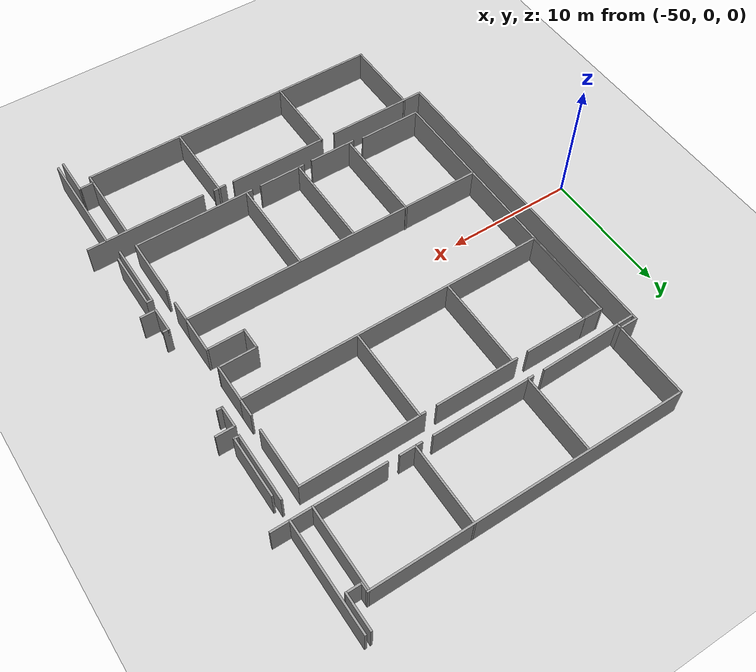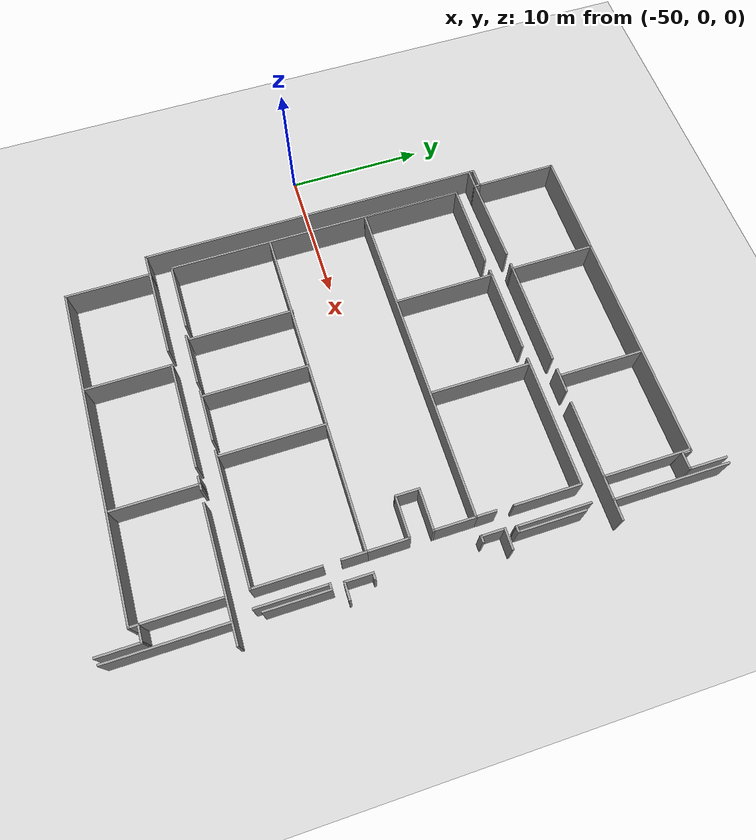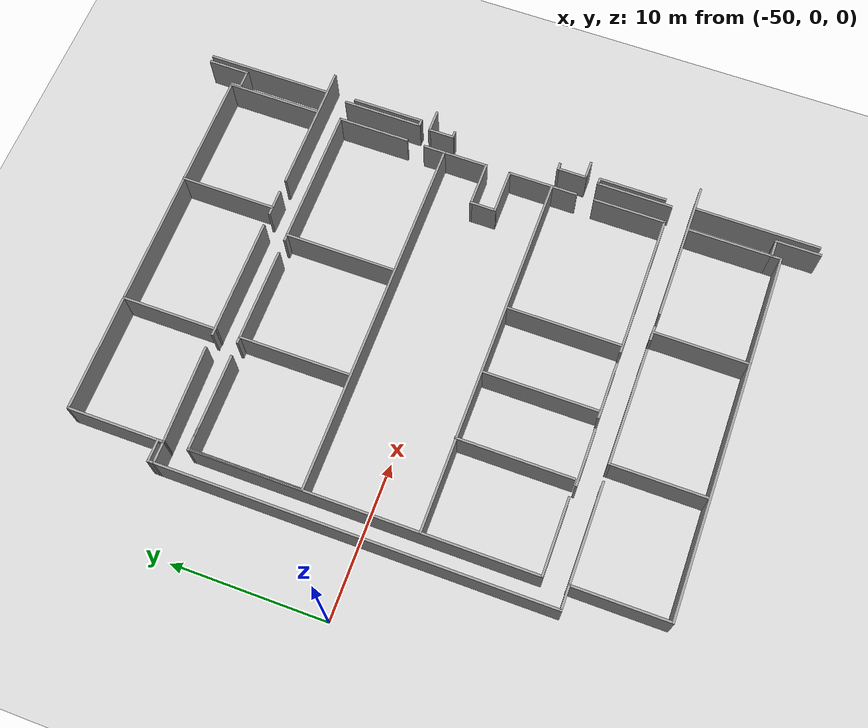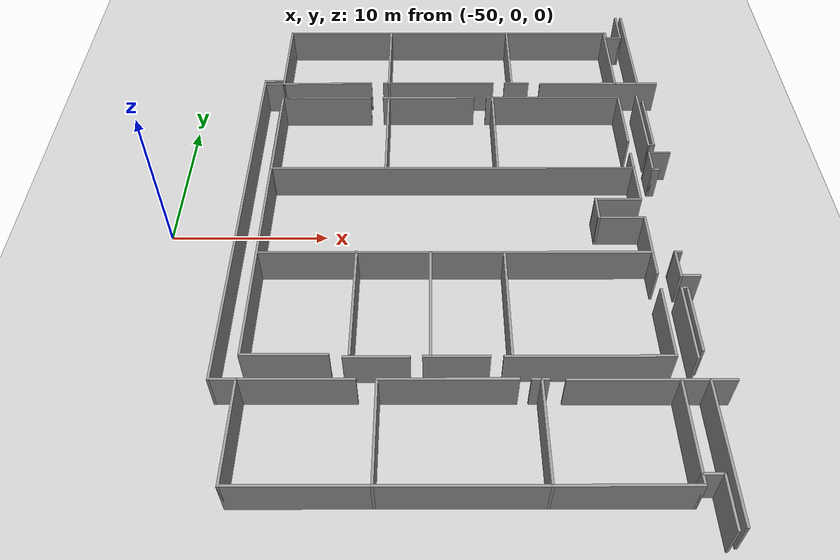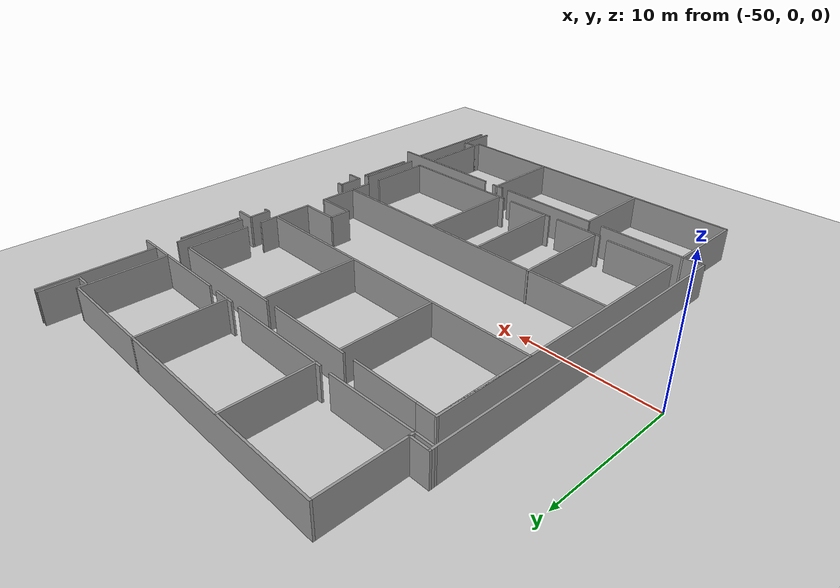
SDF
<sdf version="1.7">
 <world name="default">
  <model name="ground_plane">
   <static>1</static>
   <link name="link">
    <collision name="collision">
     <geometry><plane><normal>0 0 1</normal><size>100 100</size></plane></geometry>
     <surface>
      <contact><collide_bitmask>65535</collide_bitmask></contact>
      <friction><ode><mu>100</mu><mu2>50</mu2></ode></friction>
     </surface>
    </collision>
    <visual name="visual">
     <cast_shadows>0</cast_shadows>
     <geometry><plane><normal>0 0 1</normal><size>100 100</size></plane></geometry>
     <material>
      <script><uri>file://media/materials/scripts/gazebo.material</uri><name>Gazebo/Grey</name></script>
     </material>
    </visual>
   </link>
  </model>
  <model name="minerva">
   <pose>-0.765751 0.164905 0 0 -0 0</pose>
   <link name="Wall_10">
    <collision name="Wall_10_Collision">
     <geometry><box><size>0.75 0.15 2.5</size></box></geometry>
     <pose>0 0 1.25 0 -0 0</pose>
    </collision>
    <visual name="Wall_10_Visual">
     <pose>0 0 1.25 0 -0 0</pose>
     <geometry><box><size>0.75 0.15 2.5</size></box></geometry>
     <material>
      <script><uri>file://media/materials/scripts/gazebo.material</uri><name>Gazebo/Grey</name></script>
      <ambient>1 1 1 1</ambient>
     </material>
     <meta><layer>0</layer></meta>
    </visual>
    <pose>-19.05 18.4608 0 0 -0 1.5708</pose>
   </link>
   <link name="Wall_13">
    <collision name="Wall_13_Collision">
     <geometry><box><size>24.25 0.15 2.5</size></box></geometry>
     <pose>0 0 1.25 0 -0 0</pose>
    </collision>
    <visual name="Wall_13_Visual">
     <pose>0 0 1.25 0 -0 0</pose>
     <geometry><box><size>24.25 0.15 2.5</size></box></geometry>
     <material>
      <script><uri>file://media/materials/scripts/gazebo.material</uri><name>Gazebo/Grey</name></script>
      <ambient>1 1 1 1</ambient>
     </material>
     <meta><layer>0</layer></meta>
    </visual>
    <pose>-31.1 18.7608 0 0 -0 3.14159</pose>
   </link>
   <link name="Wall_14">
    <collision name="Wall_14_Collision">
     <geometry><box><size>6 0.15 2.5</size></box></geometry>
     <pose>0 0 1.25 0 -0 0</pose>
    </collision>
    <visual name="Wall_14_Visual">
     <pose>0 0 1.25 0 -0 0</pose>
     <geometry><box><size>6 0.15 2.5</size></box></geometry>
     <material>
      <script><uri>file://media/materials/scripts/gazebo.material</uri><name>Gazebo/Grey</name></script>
      <ambient>1 1 1 1</ambient>
     </material>
     <meta><layer>0</layer></meta>
    </visual>
    <pose>-43.15 15.8358 0 0 -0 -1.5708</pose>
   </link>
   <link name="Wall_15">
    <collision name="Wall_15_Collision">
     <geometry><box><size>1.5 0.15 2.5</size></box></geometry>
     <pose>0 0 1.25 0 -0 0</pose>
    </collision>
    <visual name="Wall_15_Visual">
     <pose>0 0 1.25 0 -0 0</pose>
     <geometry><box><size>1.5 0.15 2.5</size></box></geometry>
     <material>
      <script><uri>file://media/materials/scripts/gazebo.material</uri><name>Gazebo/Grey</name></script>
      <ambient>1 1 1 1</ambient>
     </material>
     <meta><layer>0</layer></meta>
    </visual>
    <pose>-43.825 12.9108 0 0 -0 3.14159</pose>
   </link>
   <link name="Wall_17">
    <collision name="Wall_17_Collision">
     <geometry><box><size>25.5 0.15 2.5</size></box></geometry>
     <pose>0 0 1.25 0 -0 0</pose>
    </collision>
    <visual name="Wall_17_Visual">
     <pose>0 0 1.25 0 -0 0</pose>
     <geometry><box><size>25.5 0.15 2.5</size></box></geometry>
     <material>
      <script><uri>file://media/materials/scripts/gazebo.material</uri><name>Gazebo/Grey</name></script>
      <ambient>1 1 1 1</ambient>
     </material>
     <meta><layer>0</layer></meta>
    </visual>
    <pose>-44.5 0.235782 0 0 -0 -1.5708</pose>
   </link>
   <link name="Wall_18">
    <collision name="Wall_18_Collision">
     <geometry><box><size>8 0.15 2.5</size></box></geometry>
     <pose>0 0 1.25 0 -0 0</pose>
    </collision>
    <visual name="Wall_18_Visual">
     <pose>0 0 1.25 0 -0 0</pose>
     <geometry><box><size>8 0.15 2.5</size></box></geometry>
     <material>
      <script><uri>file://media/materials/scripts/gazebo.material</uri><name>Gazebo/Grey</name></script>
      <ambient>1 1 1 1</ambient>
     </material>
     <meta><layer>0</layer></meta>
    </visual>
    <pose>-40.575 -12.4392 0 0 -0 0</pose>
   </link>
   <link name="Wall_20">
    <collision name="Wall_20_Collision">
     <geometry><box><size>6.25 0.15 2.5</size></box></geometry>
     <pose>0 0 1.25 0 -0 0</pose>
    </collision>
    <visual name="Wall_20_Visual">
     <pose>0 0 1.25 0 -0 0</pose>
     <geometry><box><size>6.25 0.15 2.5</size></box></geometry>
     <material>
      <script><uri>file://media/materials/scripts/gazebo.material</uri><name>Gazebo/Grey</name></script>
      <ambient>1 1 1 1</ambient>
     </material>
     <meta><layer>0</layer></meta>
    </visual>
    <pose>-43.0132 -15.4758 0 0 -0 -1.5708</pose>
   </link>
   <link name="Wall_21">
    <collision name="Wall_21_Collision">
     <geometry><box><size>24 0.15 2.5</size></box></geometry>
     <pose>0 0 1.25 0 -0 0</pose>
    </collision>
    <visual name="Wall_21_Visual">
     <pose>0 0 1.25 0 -0 0</pose>
     <geometry><box><size>24 0.15 2.5</size></box></geometry>
     <material>
      <script><uri>file://media/materials/scripts/gazebo.material</uri><name>Gazebo/Grey</name></script>
      <ambient>1 1 1 1</ambient>
     </material>
     <meta><layer>0</layer></meta>
    </visual>
    <pose>-31.0882 -18.5258 0 0 -0 0</pose>
   </link>
   <link name="Wall_22">
    <collision name="Wall_22_Collision">
     <geometry><box><size>0.75 0.15 2.5</size></box></geometry>
     <pose>0 0 1.25 0 -0 0</pose>
    </collision>
    <visual name="Wall_22_Visual">
     <pose>0 0 1.25 0 -0 0</pose>
     <geometry><box><size>0.75 0.15 2.5</size></box></geometry>
     <material>
      <script><uri>file://media/materials/scripts/gazebo.material</uri><name>Gazebo/Grey</name></script>
      <ambient>1 1 1 1</ambient>
     </material>
     <meta><layer>0</layer></meta>
    </visual>
    <pose>-19.1632 -18.2258 0 0 -0 1.5708</pose>
   </link>
   <link name="Wall_23">
    <collision name="Wall_23_Collision">
     <geometry><box><size>1.25 0.15 2.5</size></box></geometry>
     <pose>0 0 1.25 0 -0 0</pose>
    </collision>
    <visual name="Wall_23_Visual">
     <pose>0 0 1.25 0 -0 0</pose>
     <geometry><box><size>1.25 0.15 2.5</size></box></geometry>
     <material>
      <script><uri>file://media/materials/scripts/gazebo.material</uri><name>Gazebo/Grey</name></script>
      <ambient>1 1 1 1</ambient>
     </material>
     <meta><layer>0</layer></meta>
    </visual>
    <pose>-18.6132 -17.9258 0 0 -0 0</pose>
   </link>
   <link name="Wall_24">
    <collision name="Wall_24_Collision">
     <geometry><box><size>3 0.15 2.5</size></box></geometry>
     <pose>0 0 1.25 0 -0 0</pose>
    </collision>
    <visual name="Wall_24_Visual">
     <pose>0 0 1.25 0 -0 0</pose>
     <geometry><box><size>3 0.15 2.5</size></box></geometry>
     <material>
      <script><uri>file://media/materials/scripts/gazebo.material</uri><name>Gazebo/Grey</name></script>
      <ambient>1 1 1 1</ambient>
     </material>
     <meta><layer>0</layer></meta>
    </visual>
    <pose>-18.0632 -19.3508 0 0 -0 -1.5708</pose>
   </link>
   <link name="Wall_280">
    <collision name="Wall_280_Collision">
     <geometry><box><size>8.25 0.15 2.5</size></box></geometry>
     <pose>0 0 1.25 0 -0 0</pose>
    </collision>
    <visual name="Wall_280_Visual">
     <pose>0 0 1.25 0 -0 0</pose>
     <geometry><box><size>8.25 0.15 2.5</size></box></geometry>
     <material>
      <script><uri>file://media/materials/scripts/gazebo.material</uri><name>Gazebo/Grey</name></script>
      <ambient>1 1 1 1</ambient>
     </material>
     <meta><layer>0</layer></meta>
    </visual>
    <pose>-17.5469 16.7103 0 0 -0 -1.5708</pose>
   </link>
   <link name="Wall_282">
    <collision name="Wall_282_Collision">
     <geometry><box><size>8.5 0.15 2.5</size></box></geometry>
     <pose>0 0 1.25 0 -0 0</pose>
    </collision>
    <visual name="Wall_282_Visual">
     <pose>0 0 1.25 0 -0 0</pose>
     <geometry><box><size>8.5 0.15 2.5</size></box></geometry>
     <material>
      <script><uri>file://media/materials/scripts/gazebo.material</uri><name>Gazebo/Grey</name></script>
      <ambient>1 1 1 1</ambient>
     </material>
     <meta><layer>0</layer></meta>
    </visual>
    <pose>-20.3727 12.6031 0 0 -0 3.14159</pose>
   </link>
   <link name="Wall_284">
    <collision name="Wall_284_Collision">
     <geometry><box><size>6.25 0.15 2.5</size></box></geometry>
     <pose>0 0 1.25 0 -0 0</pose>
    </collision>
    <visual name="Wall_284_Visual">
     <pose>0 0 1.25 0 -0 0</pose>
     <geometry><box><size>6.25 0.15 2.5</size></box></geometry>
     <material>
      <script><uri>file://media/materials/scripts/gazebo.material</uri><name>Gazebo/Grey</name></script>
      <ambient>1 1 1 1</ambient>
     </material>
     <meta><layer>0</layer></meta>
    </visual>
    <pose>-19.1597 15.6531 0 0 -0 1.5708</pose>
   </link>
   <link name="Wall_286">
    <collision name="Wall_286_Collision">
     <geometry><box><size>1.75 0.15 2.5</size></box></geometry>
     <pose>0 0 1.25 0 -0 0</pose>
    </collision>
    <visual name="Wall_286_Visual">
     <pose>0 0 1.25 0 -0 0</pose>
     <geometry><box><size>1.75 0.15 2.5</size></box></geometry>
     <material>
      <script><uri>file://media/materials/scripts/gazebo.material</uri><name>Gazebo/Grey</name></script>
      <ambient>1 1 1 1</ambient>
     </material>
     <meta><layer>0</layer></meta>
    </visual>
    <pose>-26.3087 12.6368 0 0 -0 3.14159</pose>
   </link>
   <link name="Wall_288">
    <collision name="Wall_288_Collision">
     <geometry><box><size>8 0.15 2.5</size></box></geometry>
     <pose>0 0 1.25 0 -0 0</pose>
    </collision>
    <visual name="Wall_288_Visual">
     <pose>0 0 1.25 0 -0 0</pose>
     <geometry><box><size>8 0.15 2.5</size></box></geometry>
     <material>
      <script><uri>file://media/materials/scripts/gazebo.material</uri><name>Gazebo/Grey</name></script>
      <ambient>1 1 1 1</ambient>
     </material>
     <meta><layer>0</layer></meta>
    </visual>
    <pose>-31.9686 12.6514 0 0 -0 0</pose>
   </link>
   <link name="Wall_291">
    <collision name="Wall_291_Collision">
     <geometry><box><size>6.25 0.15 2.5</size></box></geometry>
     <pose>0 0 1.25 0 -0 0</pose>
    </collision>
    <visual name="Wall_291_Visual">
     <pose>0 0 1.25 0 -0 0</pose>
     <geometry><box><size>6.25 0.15 2.5</size></box></geometry>
     <material>
      <script><uri>file://media/materials/scripts/gazebo.material</uri><name>Gazebo/Grey</name></script>
      <ambient>1 1 1 1</ambient>
     </material>
     <meta><layer>0</layer></meta>
    </visual>
    <pose>-26.6555 15.7192 0 0 -0 1.5708</pose>
   </link>
   <link name="Wall_293">
    <collision name="Wall_293_Collision">
     <geometry><box><size>6.25 0.15 2.5</size></box></geometry>
     <pose>0 0 1.25 0 -0 0</pose>
    </collision>
    <visual name="Wall_293_Visual">
     <pose>0 0 1.25 0 -0 0</pose>
     <geometry><box><size>6.25 0.15 2.5</size></box></geometry>
     <material>
      <script><uri>file://media/materials/scripts/gazebo.material</uri><name>Gazebo/Grey</name></script>
      <ambient>1 1 1 1</ambient>
     </material>
     <meta><layer>0</layer></meta>
    </visual>
    <pose>-35.5369 15.6835 0 0 -0 1.5708</pose>
   </link>
   <link name="Wall_299">
    <collision name="Wall_299_Collision">
     <geometry><box><size>0.5 0.15 2.5</size></box></geometry>
     <pose>0 0 1.25 0 -0 0</pose>
    </collision>
    <visual name="Wall_299_Visual">
     <pose>0 0 1.25 0 -0 0</pose>
     <geometry><box><size>0.5 0.15 2.5</size></box></geometry>
     <material>
      <script><uri>file://media/materials/scripts/gazebo.material</uri><name>Gazebo/Grey</name></script>
      <ambient>1 1 1 1</ambient>
     </material>
     <meta><layer>0</layer></meta>
    </visual>
    <pose>-43.15 12.7358 0 0 -0 -1.5708</pose>
   </link>
   <link name="Wall_301">
    <collision name="Wall_301_Collision">
     <geometry><box><size>6.43697 0.15 2.5</size></box></geometry>
     <pose>0 0 1.25 0 -0 0</pose>
    </collision>
    <visual name="Wall_301_Visual">
     <pose>0 0 1.25 0 -0 0</pose>
     <geometry><box><size>6.43697 0.15 2.5</size></box></geometry>
     <material>
      <script><uri>file://media/materials/scripts/gazebo.material</uri><name>Gazebo/Grey</name></script>
      <ambient>1 1 1 1</ambient>
     </material>
     <meta><layer>0</layer></meta>
    </visual>
    <pose>-40.0071 12.6206 0 0 -0 -3.12255</pose>
   </link>
   <link name="Wall_303">
    <collision name="Wall_303_Collision">
     <geometry><box><size>6.25 0.15 2.5</size></box></geometry>
     <pose>0 0 1.25 0 -0 0</pose>
    </collision>
    <visual name="Wall_303_Visual">
     <pose>0 0 1.25 0 -0 0</pose>
     <geometry><box><size>6.25 0.15 2.5</size></box></geometry>
     <material>
      <script><uri>file://media/materials/scripts/gazebo.material</uri><name>Gazebo/Grey</name></script>
      <ambient>1 1 1 1</ambient>
     </material>
     <meta><layer>0</layer></meta>
    </visual>
    <pose>-39.901 10.9921 0 0 -0 0</pose>
   </link>
   <link name="Wall_305">
    <collision name="Wall_305_Collision">
     <geometry><box><size>6.5 0.15 2.5</size></box></geometry>
     <pose>0 0 1.25 0 -0 0</pose>
    </collision>
    <visual name="Wall_305_Visual">
     <pose>0 0 1.25 0 -0 0</pose>
     <geometry><box><size>6.5 0.15 2.5</size></box></geometry>
     <material>
      <script><uri>file://media/materials/scripts/gazebo.material</uri><name>Gazebo/Grey</name></script>
      <ambient>1 1 1 1</ambient>
     </material>
     <meta><layer>0</layer></meta>
    </visual>
    <pose>-32.6767 11.0157 0 0 -0 0</pose>
   </link>
   <link name="Wall_307">
    <collision name="Wall_307_Collision">
     <geometry><box><size>9.5 0.15 2.5</size></box></geometry>
     <pose>0 0 1.25 0 -0 0</pose>
    </collision>
    <visual name="Wall_307_Visual">
     <pose>0 0 1.25 0 -0 0</pose>
     <geometry><box><size>9.5 0.15 2.5</size></box></geometry>
     <material>
      <script><uri>file://media/materials/scripts/gazebo.material</uri><name>Gazebo/Grey</name></script>
      <ambient>1 1 1 1</ambient>
     </material>
     <meta><layer>0</layer></meta>
    </visual>
    <pose>-23.818 11.0157 0 0 -0 0</pose>
   </link>
   <link name="Wall_308">
    <collision name="Wall_308_Collision">
     <geometry><box><size>4.75 0.15 2.5</size></box></geometry>
     <pose>0 0 1.25 0 -0 0</pose>
    </collision>
    <visual name="Wall_308_Visual">
     <pose>0 0 1.25 0 -0 0</pose>
     <geometry><box><size>4.75 0.15 2.5</size></box></geometry>
     <material>
      <script><uri>file://media/materials/scripts/gazebo.material</uri><name>Gazebo/Grey</name></script>
      <ambient>1 1 1 1</ambient>
     </material>
     <meta><layer>0</layer></meta>
    </visual>
    <pose>-19.143 8.71568 0 0 -0 -1.5708</pose>
   </link>
   <link name="Wall_310">
    <collision name="Wall_310_Collision">
     <geometry><box><size>1.5 0.15 2.5</size></box></geometry>
     <pose>0 0 1.25 0 -0 0</pose>
    </collision>
    <visual name="Wall_310_Visual">
     <pose>0 0 1.25 0 -0 0</pose>
     <geometry><box><size>1.5 0.15 2.5</size></box></geometry>
     <material>
      <script><uri>file://media/materials/scripts/gazebo.material</uri><name>Gazebo/Grey</name></script>
      <ambient>1 1 1 1</ambient>
     </material>
     <meta><layer>0</layer></meta>
    </visual>
    <pose>-19.1766 4.46785 0 0 -0 -1.5708</pose>
   </link>
   <link name="Wall_311">
    <collision name="Wall_311_Collision">
     <geometry><box><size>24 0.15 2.5</size></box></geometry>
     <pose>0 0 1.25 0 -0 0</pose>
    </collision>
    <visual name="Wall_311_Visual">
     <pose>0 0 1.25 0 -0 0</pose>
     <geometry><box><size>24 0.15 2.5</size></box></geometry>
     <material>
      <script><uri>file://media/materials/scripts/gazebo.material</uri><name>Gazebo/Grey</name></script>
      <ambient>1 1 1 1</ambient>
     </material>
     <meta><layer>0</layer></meta>
    </visual>
    <pose>-31.1016 3.79285 0 0 -0 3.14159</pose>
   </link>
   <link name="Wall_312">
    <collision name="Wall_312_Collision">
     <geometry><box><size>7.25 0.15 2.5</size></box></geometry>
     <pose>0 0 1.25 0 -0 0</pose>
    </collision>
    <visual name="Wall_312_Visual">
     <pose>0 0 1.25 0 -0 0</pose>
     <geometry><box><size>7.25 0.15 2.5</size></box></geometry>
     <material>
      <script><uri>file://media/materials/scripts/gazebo.material</uri><name>Gazebo/Grey</name></script>
      <ambient>1 1 1 1</ambient>
     </material>
     <meta><layer>0</layer></meta>
    </visual>
    <pose>-43.0266 7.34285 0 0 -0 1.5708</pose>
   </link>
   <link name="Wall_314">
    <collision name="Wall_314_Collision">
     <geometry><box><size>1.5 0.15 2.5</size></box></geometry>
     <pose>0 0 1.25 0 -0 0</pose>
    </collision>
    <visual name="Wall_314_Visual">
     <pose>0 0 1.25 0 -0 0</pose>
     <geometry><box><size>1.5 0.15 2.5</size></box></geometry>
     <material>
      <script><uri>file://media/materials/scripts/gazebo.material</uri><name>Gazebo/Grey</name></script>
      <ambient>1 1 1 1</ambient>
     </material>
     <meta><layer>0</layer></meta>
    </visual>
    <pose>-42.3847 10.9984 0 0 -0 3.14159</pose>
   </link>
   <link name="Wall_316">
    <collision name="Wall_316_Collision">
     <geometry><box><size>7.25 0.15 2.5</size></box></geometry>
     <pose>0 0 1.25 0 -0 0</pose>
    </collision>
    <visual name="Wall_316_Visual">
     <pose>0 0 1.25 0 -0 0</pose>
     <geometry><box><size>7.25 0.15 2.5</size></box></geometry>
     <material>
      <script><uri>file://media/materials/scripts/gazebo.material</uri><name>Gazebo/Grey</name></script>
      <ambient>1 1 1 1</ambient>
     </material>
     <meta><layer>0</layer></meta>
    </visual>
    <pose>-35.5006 7.46141 0 0 -0 -1.5708</pose>
   </link>
   <link name="Wall_318">
    <collision name="Wall_318_Collision">
     <geometry><box><size>7.25 0.15 2.5</size></box></geometry>
     <pose>0 0 1.25 0 -0 0</pose>
    </collision>
    <visual name="Wall_318_Visual">
     <pose>0 0 1.25 0 -0 0</pose>
     <geometry><box><size>7.25 0.15 2.5</size></box></geometry>
     <material>
      <script><uri>file://media/materials/scripts/gazebo.material</uri><name>Gazebo/Grey</name></script>
      <ambient>1 1 1 1</ambient>
     </material>
     <meta><layer>0</layer></meta>
    </visual>
    <pose>-28.1173 7.46141 0 0 -0 -1.5708</pose>
   </link>
   <link name="Wall_328">
    <collision name="Wall_328_Collision">
     <geometry><box><size>5.25 0.15 2.5</size></box></geometry>
     <pose>0 0 1.25 0 -0 0</pose>
    </collision>
    <visual name="Wall_328_Visual">
     <pose>0 0 1.25 0 -0 0</pose>
     <geometry><box><size>5.25 0.15 2.5</size></box></geometry>
     <material>
      <script><uri>file://media/materials/scripts/gazebo.material</uri><name>Gazebo/Grey</name></script>
      <ambient>1 1 1 1</ambient>
     </material>
     <meta><layer>0</layer></meta>
    </visual>
    <pose>-17.8188 8.57608 0 0 -0 -1.5708</pose>
   </link>
   <link name="Wall_329">
    <collision name="Wall_329_Collision">
     <geometry><box><size>0.5 0.15 2.5</size></box></geometry>
     <pose>0 0 1.25 0 -0 0</pose>
    </collision>
    <visual name="Wall_329_Visual">
     <pose>0 0 1.25 0 -0 0</pose>
     <geometry><box><size>0.5 0.15 2.5</size></box></geometry>
     <material>
      <script><uri>file://media/materials/scripts/gazebo.material</uri><name>Gazebo/Grey</name></script>
      <ambient>1 1 1 1</ambient>
     </material>
     <meta><layer>0</layer></meta>
    </visual>
    <pose>-17.6438 6.02608 0 0 -0 0</pose>
   </link>
   <link name="Wall_330">
    <collision name="Wall_330_Collision">
     <geometry><box><size>4.75 0.15 2.5</size></box></geometry>
     <pose>0 0 1.25 0 -0 0</pose>
    </collision>
    <visual name="Wall_330_Visual">
     <pose>0 0 1.25 0 -0 0</pose>
     <geometry><box><size>4.75 0.15 2.5</size></box></geometry>
     <material>
      <script><uri>file://media/materials/scripts/gazebo.material</uri><name>Gazebo/Grey</name></script>
      <ambient>1 1 1 1</ambient>
     </material>
     <meta><layer>0</layer></meta>
    </visual>
    <pose>-17.4688 8.32608 0 0 -0 1.5708</pose>
   </link>
   <link name="Wall_337">
    <collision name="Wall_337_Collision">
     <geometry><box><size>1.5 0.15 2.5</size></box></geometry>
     <pose>0 0 1.25 0 -0 0</pose>
    </collision>
    <visual name="Wall_337_Visual">
     <pose>0 0 1.25 0 -0 0</pose>
     <geometry><box><size>1.5 0.15 2.5</size></box></geometry>
     <material>
      <script><uri>file://media/materials/scripts/gazebo.material</uri><name>Gazebo/Grey</name></script>
      <ambient>1 1 1 1</ambient>
     </material>
     <meta><layer>0</layer></meta>
    </visual>
    <pose>-17.2438 5.27608 0 0 -0 3.14159</pose>
   </link>
   <link name="Wall_339">
    <collision name="Wall_339_Collision">
     <geometry><box><size>1.75 0.15 2.5</size></box></geometry>
     <pose>0 0 1.25 0 -0 0</pose>
    </collision>
    <visual name="Wall_339_Visual">
     <pose>0 0 1.25 0 -0 0</pose>
     <geometry><box><size>1.75 0.15 2.5</size></box></geometry>
     <material>
      <script><uri>file://media/materials/scripts/gazebo.material</uri><name>Gazebo/Grey</name></script>
      <ambient>1 1 1 1</ambient>
     </material>
     <meta><layer>0</layer></meta>
    </visual>
    <pose>-17.9188 4.47608 0 0 -0 -1.5708</pose>
   </link>
   <link name="Wall_340">
    <collision name="Wall_340_Collision">
     <geometry><box><size>0.5 0.15 2.5</size></box></geometry>
     <pose>0 0 1.25 0 -0 0</pose>
    </collision>
    <visual name="Wall_340_Visual">
     <pose>0 0 1.25 0 -0 0</pose>
     <geometry><box><size>0.5 0.15 2.5</size></box></geometry>
     <material>
      <script><uri>file://media/materials/scripts/gazebo.material</uri><name>Gazebo/Grey</name></script>
      <ambient>1 1 1 1</ambient>
     </material>
     <meta><layer>0</layer></meta>
    </visual>
    <pose>-17.7438 3.67608 0 0 -0 0</pose>
   </link>
   <link name="Wall_350">
    <collision name="Wall_350_Collision">
     <geometry><box><size>3 0.15 2.5</size></box></geometry>
     <pose>0 0 1.25 0 -0 0</pose>
    </collision>
    <visual name="Wall_350_Visual">
     <pose>0 0 1.25 0 -0 0</pose>
     <geometry><box><size>3 0.15 2.5</size></box></geometry>
     <material>
      <script><uri>file://media/materials/scripts/gazebo.material</uri><name>Gazebo/Grey</name></script>
      <ambient>1 1 1 1</ambient>
     </material>
     <meta><layer>0</layer></meta>
    </visual>
    <pose>-19.1766 2.36785 0 0 -0 -1.5708</pose>
   </link>
   <link name="Wall_351">
    <collision name="Wall_351_Collision">
     <geometry><box><size>3 0.15 2.5</size></box></geometry>
     <pose>0 0 1.25 0 -0 0</pose>
    </collision>
    <visual name="Wall_351_Visual">
     <pose>0 0 1.25 0 -0 0</pose>
     <geometry><box><size>3 0.15 2.5</size></box></geometry>
     <material>
      <script><uri>file://media/materials/scripts/gazebo.material</uri><name>Gazebo/Grey</name></script>
      <ambient>1 1 1 1</ambient>
     </material>
     <meta><layer>0</layer></meta>
    </visual>
    <pose>-20.6016 0.942847 0 0 -0 3.14159</pose>
   </link>
   <link name="Wall_352">
    <collision name="Wall_352_Collision">
     <geometry><box><size>1.75 0.15 2.5</size></box></geometry>
     <pose>0 0 1.25 0 -0 0</pose>
    </collision>
    <visual name="Wall_352_Visual">
     <pose>0 0 1.25 0 -0 0</pose>
     <geometry><box><size>1.75 0.15 2.5</size></box></geometry>
     <material>
      <script><uri>file://media/materials/scripts/gazebo.material</uri><name>Gazebo/Grey</name></script>
      <ambient>1 1 1 1</ambient>
     </material>
     <meta><layer>0</layer></meta>
    </visual>
    <pose>-22.0266 0.142847 0 0 -0 -1.5708</pose>
   </link>
   <link name="Wall_353">
    <collision name="Wall_353_Collision">
     <geometry><box><size>3 0.15 2.5</size></box></geometry>
     <pose>0 0 1.25 0 -0 0</pose>
    </collision>
    <visual name="Wall_353_Visual">
     <pose>0 0 1.25 0 -0 0</pose>
     <geometry><box><size>3 0.15 2.5</size></box></geometry>
     <material>
      <script><uri>file://media/materials/scripts/gazebo.material</uri><name>Gazebo/Grey</name></script>
      <ambient>1 1 1 1</ambient>
     </material>
     <meta><layer>0</layer></meta>
    </visual>
    <pose>-20.6016 -0.657153 0 0 -0 0</pose>
   </link>
   <link name="Wall_354">
    <collision name="Wall_354_Collision">
     <geometry><box><size>3 0.15 2.5</size></box></geometry>
     <pose>0 0 1.25 0 -0 0</pose>
    </collision>
    <visual name="Wall_354_Visual">
     <pose>0 0 1.25 0 -0 0</pose>
     <geometry><box><size>3 0.15 2.5</size></box></geometry>
     <material>
      <script><uri>file://media/materials/scripts/gazebo.material</uri><name>Gazebo/Grey</name></script>
      <ambient>1 1 1 1</ambient>
     </material>
     <meta><layer>0</layer></meta>
    </visual>
    <pose>-19.1766 -2.08215 0 0 -0 -1.5708</pose>
   </link>
   <link name="Wall_358">
    <collision name="Wall_358_Collision">
     <geometry><box><size>22 0.15 2.5</size></box></geometry>
     <pose>0 0 1.25 0 -0 0</pose>
    </collision>
    <visual name="Wall_358_Visual">
     <pose>0 0 1.25 0 -0 0</pose>
     <geometry><box><size>22 0.15 2.5</size></box></geometry>
     <material>
      <script><uri>file://media/materials/scripts/gazebo.material</uri><name>Gazebo/Grey</name></script>
      <ambient>1 1 1 1</ambient>
     </material>
     <meta><layer>0</layer></meta>
    </visual>
    <pose>-43.0597 0.073442 0 0 -0 -1.5708</pose>
   </link>
   <link name="Wall_359">
    <collision name="Wall_359_Collision">
     <geometry><box><size>5 0.15 2.5</size></box></geometry>
     <pose>0 0 1.25 0 -0 0</pose>
    </collision>
    <visual name="Wall_359_Visual">
     <pose>0 0 1.25 0 -0 0</pose>
     <geometry><box><size>5 0.15 2.5</size></box></geometry>
     <material>
      <script><uri>file://media/materials/scripts/gazebo.material</uri><name>Gazebo/Grey</name></script>
      <ambient>1 1 1 1</ambient>
     </material>
     <meta><layer>0</layer></meta>
    </visual>
    <pose>-40.6347 -10.8516 0 0 -0 0</pose>
   </link>
   <link name="Wall_361">
    <collision name="Wall_361_Collision">
     <geometry><box><size>24 0.15 2.5</size></box></geometry>
     <pose>0 0 1.25 0 -0 0</pose>
    </collision>
    <visual name="Wall_361_Visual">
     <pose>0 0 1.25 0 -0 0</pose>
     <geometry><box><size>24 0.15 2.5</size></box></geometry>
     <material>
      <script><uri>file://media/materials/scripts/gazebo.material</uri><name>Gazebo/Grey</name></script>
      <ambient>1 1 1 1</ambient>
     </material>
     <meta><layer>0</layer></meta>
    </visual>
    <pose>-31.1016 -3.50715 0 0 -0 3.14159</pose>
   </link>
   <link name="Wall_363">
    <collision name="Wall_363_Collision">
     <geometry><box><size>3.75 0.15 2.5</size></box></geometry>
     <pose>0 0 1.25 0 -0 0</pose>
    </collision>
    <visual name="Wall_363_Visual">
     <pose>0 0 1.25 0 -0 0</pose>
     <geometry><box><size>3.75 0.15 2.5</size></box></geometry>
     <material>
      <script><uri>file://media/materials/scripts/gazebo.material</uri><name>Gazebo/Grey</name></script>
      <ambient>1 1 1 1</ambient>
     </material>
     <meta><layer>0</layer></meta>
    </visual>
    <pose>-35.5557 -11.0233 0 0 -0 0</pose>
   </link>
   <link name="Wall_365">
    <collision name="Wall_365_Collision">
     <geometry><box><size>7.5 0.15 2.5</size></box></geometry>
     <pose>0 0 1.25 0 -0 0</pose>
    </collision>
    <visual name="Wall_365_Visual">
     <pose>0 0 1.25 0 -0 0</pose>
     <geometry><box><size>7.5 0.15 2.5</size></box></geometry>
     <material>
      <script><uri>file://media/materials/scripts/gazebo.material</uri><name>Gazebo/Grey</name></script>
      <ambient>1 1 1 1</ambient>
     </material>
     <meta><layer>0</layer></meta>
    </visual>
    <pose>-37.0347 -7.13662 0 0 -0 -1.5708</pose>
   </link>
   <link name="Wall_367">
    <collision name="Wall_367_Collision">
     <geometry><box><size>7.5 0.15 2.5</size></box></geometry>
     <pose>0 0 1.25 0 -0 0</pose>
    </collision>
    <visual name="Wall_367_Visual">
     <pose>0 0 1.25 0 -0 0</pose>
     <geometry><box><size>7.5 0.15 2.5</size></box></geometry>
     <material>
      <script><uri>file://media/materials/scripts/gazebo.material</uri><name>Gazebo/Grey</name></script>
      <ambient>1 1 1 1</ambient>
     </material>
     <meta><layer>0</layer></meta>
    </visual>
    <pose>-32.5761 -7.24362 0 0 -0 -1.5708</pose>
   </link>
   <link name="Wall_369">
    <collision name="Wall_369_Collision">
     <geometry><box><size>3.75 0.15 2.5</size></box></geometry>
     <pose>0 0 1.25 0 -0 0</pose>
    </collision>
    <visual name="Wall_369_Visual">
     <pose>0 0 1.25 0 -0 0</pose>
     <geometry><box><size>3.75 0.15 2.5</size></box></geometry>
     <material>
      <script><uri>file://media/materials/scripts/gazebo.material</uri><name>Gazebo/Grey</name></script>
      <ambient>1 1 1 1</ambient>
     </material>
     <meta><layer>0</layer></meta>
    </visual>
    <pose>-31.1514 -10.9875 0 0 -0 0</pose>
   </link>
   <link name="Wall_371">
    <collision name="Wall_371_Collision">
     <geometry><box><size>9.5 0.15 2.5</size></box></geometry>
     <pose>0 0 1.25 0 -0 0</pose>
    </collision>
    <visual name="Wall_371_Visual">
     <pose>0 0 1.25 0 -0 0</pose>
     <geometry><box><size>9.5 0.15 2.5</size></box></geometry>
     <material>
      <script><uri>file://media/materials/scripts/gazebo.material</uri><name>Gazebo/Grey</name></script>
      <ambient>1 1 1 1</ambient>
     </material>
     <meta><layer>0</layer></meta>
    </visual>
    <pose>-23.8352 -10.9772 0 0 -0 0</pose>
   </link>
   <link name="Wall_372">
    <collision name="Wall_372_Collision">
     <geometry><box><size>4.75 0.15 2.5</size></box></geometry>
     <pose>0 0 1.25 0 -0 0</pose>
    </collision>
    <visual name="Wall_372_Visual">
     <pose>0 0 1.25 0 -0 0</pose>
     <geometry><box><size>4.75 0.15 2.5</size></box></geometry>
     <material>
      <script><uri>file://media/materials/scripts/gazebo.material</uri><name>Gazebo/Grey</name></script>
      <ambient>1 1 1 1</ambient>
     </material>
     <meta><layer>0</layer></meta>
    </visual>
    <pose>-19.1602 -8.67718 0 0 -0 1.5708</pose>
   </link>
   <link name="Wall_374">
    <collision name="Wall_374_Collision">
     <geometry><box><size>7.5 0.15 2.5</size></box></geometry>
     <pose>0 0 1.25 0 -0 0</pose>
    </collision>
    <visual name="Wall_374_Visual">
     <pose>0 0 1.25 0 -0 0</pose>
     <geometry><box><size>7.5 0.15 2.5</size></box></geometry>
     <material>
      <script><uri>file://media/materials/scripts/gazebo.material</uri><name>Gazebo/Grey</name></script>
      <ambient>1 1 1 1</ambient>
     </material>
     <meta><layer>0</layer></meta>
    </visual>
    <pose>-28.1065 -7.19891 0 0 -0 -1.5708</pose>
   </link>
   <link name="Wall_376">
    <collision name="Wall_376_Collision">
     <geometry><box><size>1.75 0.15 2.5</size></box></geometry>
     <pose>0 0 1.25 0 -0 0</pose>
    </collision>
    <visual name="Wall_376_Visual">
     <pose>0 0 1.25 0 -0 0</pose>
     <geometry><box><size>1.75 0.15 2.5</size></box></geometry>
     <material>
      <script><uri>file://media/materials/scripts/gazebo.material</uri><name>Gazebo/Grey</name></script>
      <ambient>1 1 1 1</ambient>
     </material>
     <meta><layer>0</layer></meta>
    </visual>
    <pose>-19.1766 -4.30715 0 0 -0 -1.5708</pose>
   </link>
   <link name="Wall_380">
    <collision name="Wall_380_Collision">
     <geometry><box><size>8.25 0.15 2.5</size></box></geometry>
     <pose>0 0 1.25 0 -0 0</pose>
    </collision>
    <visual name="Wall_380_Visual">
     <pose>0 0 1.25 0 -0 0</pose>
     <geometry><box><size>8.25 0.15 2.5</size></box></geometry>
     <material>
      <script><uri>file://media/materials/scripts/gazebo.material</uri><name>Gazebo/Grey</name></script>
      <ambient>1 1 1 1</ambient>
     </material>
     <meta><layer>0</layer></meta>
    </visual>
    <pose>-17.5923 -16.5641 0 0 -0 -1.5708</pose>
   </link>
   <link name="Wall_386">
    <collision name="Wall_386_Collision">
     <geometry><box><size>0.5 0.15 2.5</size></box></geometry>
     <pose>0 0 1.25 0 -0 0</pose>
    </collision>
    <visual name="Wall_386_Visual">
     <pose>0 0 1.25 0 -0 0</pose>
     <geometry><box><size>0.5 0.15 2.5</size></box></geometry>
     <material>
      <script><uri>file://media/materials/scripts/gazebo.material</uri><name>Gazebo/Grey</name></script>
      <ambient>1 1 1 1</ambient>
     </material>
     <meta><layer>0</layer></meta>
    </visual>
    <pose>-17.6314 -3.47713 0 0 -0 3.14159</pose>
   </link>
   <link name="Wall_387">
    <collision name="Wall_387_Collision">
     <geometry><box><size>2 0.15 2.5</size></box></geometry>
     <pose>0 0 1.25 0 -0 0</pose>
    </collision>
    <visual name="Wall_387_Visual">
     <pose>0 0 1.25 0 -0 0</pose>
     <geometry><box><size>2 0.15 2.5</size></box></geometry>
     <material>
      <script><uri>file://media/materials/scripts/gazebo.material</uri><name>Gazebo/Grey</name></script>
      <ambient>1 1 1 1</ambient>
     </material>
     <meta><layer>0</layer></meta>
    </visual>
    <pose>-17.8064 -4.40213 0 0 -0 -1.5708</pose>
   </link>
   <link name="Wall_388">
    <collision name="Wall_388_Collision">
     <geometry><box><size>1.25 0.15 2.5</size></box></geometry>
     <pose>0 0 1.25 0 -0 0</pose>
    </collision>
    <visual name="Wall_388_Visual">
     <pose>0 0 1.25 0 -0 0</pose>
     <geometry><box><size>1.25 0.15 2.5</size></box></geometry>
     <material>
      <script><uri>file://media/materials/scripts/gazebo.material</uri><name>Gazebo/Grey</name></script>
      <ambient>1 1 1 1</ambient>
     </material>
     <meta><layer>0</layer></meta>
    </visual>
    <pose>-17.2564 -5.32713 0 0 -0 0</pose>
   </link>
   <link name="Wall_417">
    <collision name="Wall_417_Collision">
     <geometry><box><size>5 0.15 2.5</size></box></geometry>
     <pose>0 0 1.25 0 -0 0</pose>
    </collision>
    <visual name="Wall_417_Visual">
     <pose>0 0 1.25 0 -0 0</pose>
     <geometry><box><size>5 0.15 2.5</size></box></geometry>
     <material>
      <script><uri>file://media/materials/scripts/gazebo.material</uri><name>Gazebo/Grey</name></script>
      <ambient>1 1 1 1</ambient>
     </material>
     <meta><layer>0</layer></meta>
    </visual>
    <pose>-17.9624 -8.64448 0 0 -0 1.5708</pose>
   </link>
   <link name="Wall_418">
    <collision name="Wall_418_Collision">
     <geometry><box><size>0.5 0.15 2.5</size></box></geometry>
     <pose>0 0 1.25 0 -0 0</pose>
    </collision>
    <visual name="Wall_418_Visual">
     <pose>0 0 1.25 0 -0 0</pose>
     <geometry><box><size>0.5 0.15 2.5</size></box></geometry>
     <material>
      <script><uri>file://media/materials/scripts/gazebo.material</uri><name>Gazebo/Grey</name></script>
      <ambient>1 1 1 1</ambient>
     </material>
     <meta><layer>0</layer></meta>
    </visual>
    <pose>-17.7874 -6.21948 0 0 -0 0</pose>
   </link>
   <link name="Wall_419">
    <collision name="Wall_419_Collision">
     <geometry><box><size>4.5 0.15 2.5</size></box></geometry>
     <pose>0 0 1.25 0 -0 0</pose>
    </collision>
    <visual name="Wall_419_Visual">
     <pose>0 0 1.25 0 -0 0</pose>
     <geometry><box><size>4.5 0.15 2.5</size></box></geometry>
     <material>
      <script><uri>file://media/materials/scripts/gazebo.material</uri><name>Gazebo/Grey</name></script>
      <ambient>1 1 1 1</ambient>
     </material>
     <meta><layer>0</layer></meta>
    </visual>
    <pose>-17.6124 -8.39448 0 0 -0 -1.5708</pose>
   </link>
   <link name="Wall_462">
    <collision name="Wall_462_Collision">
     <geometry><box><size>1.5 0.15 2.5</size></box></geometry>
     <pose>0 0 1.25 0 -0 0</pose>
    </collision>
    <visual name="Wall_462_Visual">
     <pose>0 0 1.25 0 -0 0</pose>
     <geometry><box><size>1.5 0.15 2.5</size></box></geometry>
     <material>
      <script><uri>file://media/materials/scripts/gazebo.material</uri><name>Gazebo/Grey</name></script>
      <ambient>1 1 1 1</ambient>
     </material>
     <meta><layer>0</layer></meta>
    </visual>
    <pose>-43.825 12.5608 0 0 -0 3.14159</pose>
   </link>
   <link name="Wall_75">
    <collision name="Wall_75_Collision">
     <geometry><box><size>6.25 0.15 2.5</size></box></geometry>
     <pose>0 0 1.25 0 -0 0</pose>
    </collision>
    <visual name="Wall_75_Visual">
     <pose>0 0 1.25 0 -0 0</pose>
     <geometry><box><size>6.25 0.15 2.5</size></box></geometry>
     <material>
      <script><uri>file://media/materials/scripts/gazebo.material</uri><name>Gazebo/Grey</name></script>
      <ambient>1 1 1 1</ambient>
     </material>
     <meta><layer>0</layer></meta>
    </visual>
    <pose>-35.4664 -15.4794 0 0 -0 -1.5708</pose>
   </link>
   <link name="Wall_77">
    <collision name="Wall_77_Collision">
     <geometry><box><size>7.75 0.15 2.5</size></box></geometry>
     <pose>0 0 1.25 0 -0 0</pose>
    </collision>
    <visual name="Wall_77_Visual">
     <pose>0 0 1.25 0 -0 0</pose>
     <geometry><box><size>7.75 0.15 2.5</size></box></geometry>
     <material>
      <script><uri>file://media/materials/scripts/gazebo.material</uri><name>Gazebo/Grey</name></script>
      <ambient>1 1 1 1</ambient>
     </material>
     <meta><layer>0</layer></meta>
    </visual>
    <pose>-31.6664 -12.4294 0 0 -0 0</pose>
   </link>
   <link name="Wall_79">
    <collision name="Wall_79_Collision">
     <geometry><box><size>1 0.15 2.5</size></box></geometry>
     <pose>0 0 1.25 0 -0 0</pose>
    </collision>
    <visual name="Wall_79_Visual">
     <pose>0 0 1.25 0 -0 0</pose>
     <geometry><box><size>1 0.15 2.5</size></box></geometry>
     <material>
      <script><uri>file://media/materials/scripts/gazebo.material</uri><name>Gazebo/Grey</name></script>
      <ambient>1 1 1 1</ambient>
     </material>
     <meta><layer>0</layer></meta>
    </visual>
    <pose>-26.6918 -12.4446 0 0 -0 0</pose>
   </link>
   <link name="Wall_8">
    <collision name="Wall_8_Collision">
     <geometry><box><size>2.75 0.15 2.5</size></box></geometry>
     <pose>0 0 1.25 0 -0 0</pose>
    </collision>
    <visual name="Wall_8_Visual">
     <pose>0 0 1.25 0 -0 0</pose>
     <geometry><box><size>2.75 0.15 2.5</size></box></geometry>
     <material>
      <script><uri>file://media/materials/scripts/gazebo.material</uri><name>Gazebo/Grey</name></script>
      <ambient>1 1 1 1</ambient>
     </material>
     <meta><layer>0</layer></meta>
    </visual>
    <pose>-17.95 19.4608 0 0 -0 -1.5708</pose>
   </link>
   <link name="Wall_81">
    <collision name="Wall_81_Collision">
     <geometry><box><size>6.25 0.15 2.5</size></box></geometry>
     <pose>0 0 1.25 0 -0 0</pose>
    </collision>
    <visual name="Wall_81_Visual">
     <pose>0 0 1.25 0 -0 0</pose>
     <geometry><box><size>6.25 0.15 2.5</size></box></geometry>
     <material>
      <script><uri>file://media/materials/scripts/gazebo.material</uri><name>Gazebo/Grey</name></script>
      <ambient>1 1 1 1</ambient>
     </material>
     <meta><layer>0</layer></meta>
    </visual>
    <pose>-26.6149 -15.4794 0 0 -0 -1.5708</pose>
   </link>
   <link name="Wall_83">
    <collision name="Wall_83_Collision">
     <geometry><box><size>9.25 0.15 2.5</size></box></geometry>
     <pose>0 0 1.25 0 -0 0</pose>
    </collision>
    <visual name="Wall_83_Visual">
     <pose>0 0 1.25 0 -0 0</pose>
     <geometry><box><size>9.25 0.15 2.5</size></box></geometry>
     <material>
      <script><uri>file://media/materials/scripts/gazebo.material</uri><name>Gazebo/Grey</name></script>
      <ambient>1 1 1 1</ambient>
     </material>
     <meta><layer>0</layer></meta>
    </visual>
    <pose>-20.7266 -12.4902 0 0 -0 0</pose>
   </link>
   <link name="Wall_85">
    <collision name="Wall_85_Collision">
     <geometry><box><size>5.5 0.15 2.5</size></box></geometry>
     <pose>0 0 1.25 0 -0 0</pose>
    </collision>
    <visual name="Wall_85_Visual">
     <pose>0 0 1.25 0 -0 0</pose>
     <geometry><box><size>5.5 0.15 2.5</size></box></geometry>
     <material>
      <script><uri>file://media/materials/scripts/gazebo.material</uri><name>Gazebo/Grey</name></script>
      <ambient>1 1 1 1</ambient>
     </material>
     <meta><layer>0</layer></meta>
    </visual>
    <pose>-19.1632 -15.2508 0 0 -0 1.5708</pose>
   </link>
   <link name="Wall_9">
    <collision name="Wall_9_Collision">
     <geometry><box><size>1.25 0.15 2.5</size></box></geometry>
     <pose>0 0 1.25 0 -0 0</pose>
    </collision>
    <visual name="Wall_9_Visual">
     <pose>0 0 1.25 0 -0 0</pose>
     <geometry><box><size>1.25 0.15 2.5</size></box></geometry>
     <material>
      <script><uri>file://media/materials/scripts/gazebo.material</uri><name>Gazebo/Grey</name></script>
      <ambient>1 1 1 1</ambient>
     </material>
     <meta><layer>0</layer></meta>
    </visual>
    <pose>-18.5 18.1608 0 0 -0 3.14159</pose>
   </link>
   <static>1</static>
  </model>
 </world>
</sdf>
